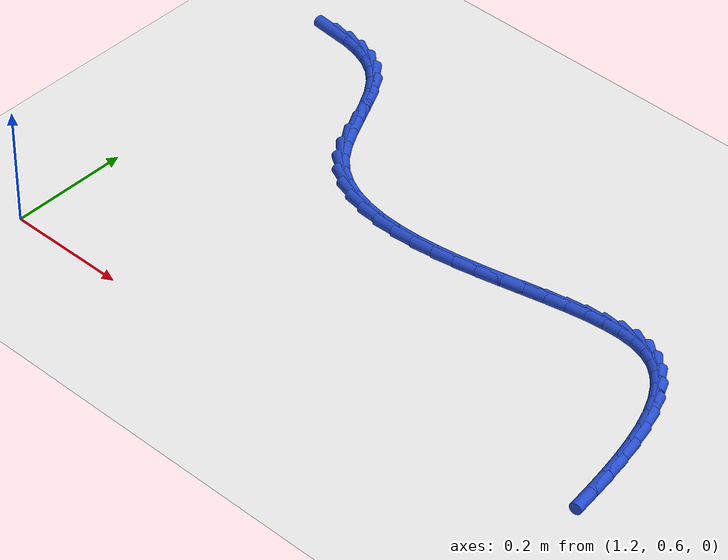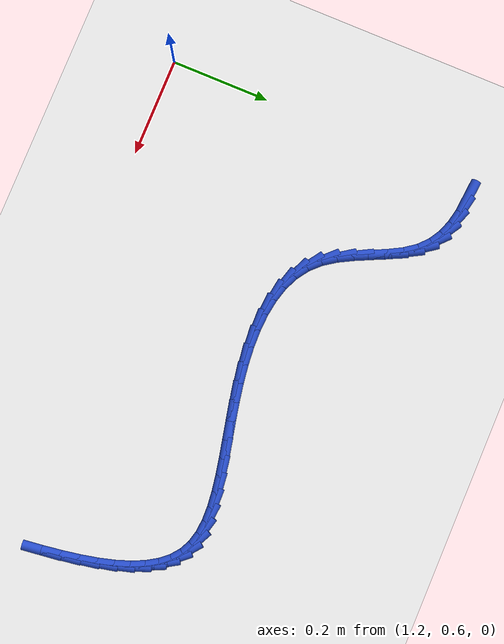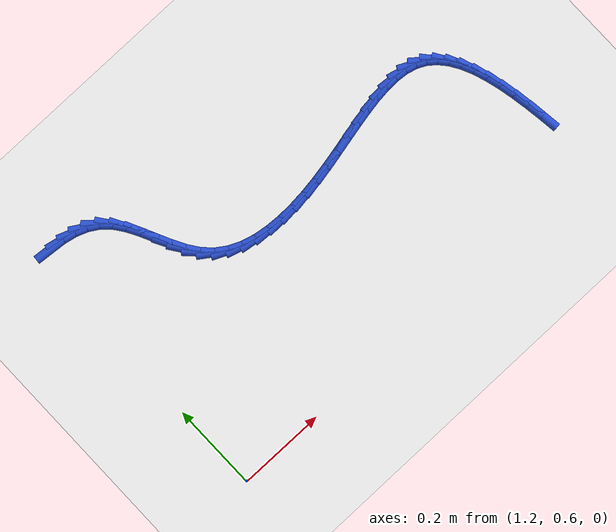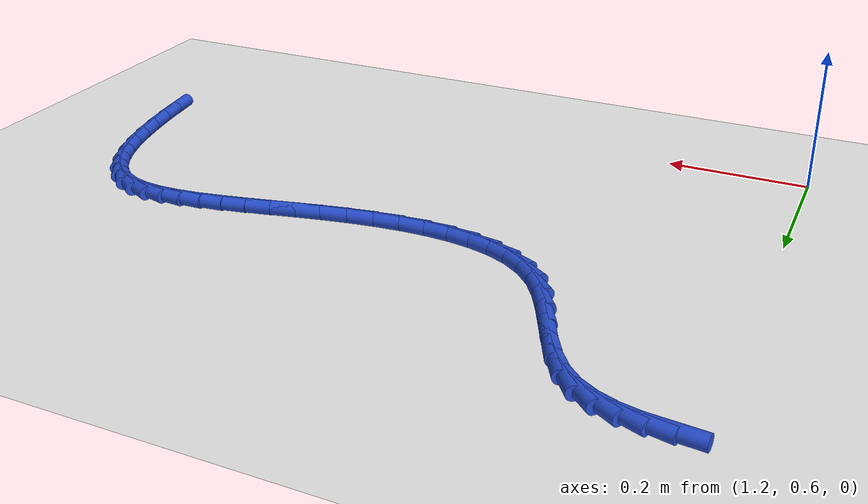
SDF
<sdf version="1.6">
 <world name="default">
  <model name="ground_plane">
   <static>1</static>
   <link name="link">
    <collision name="collision">
     <geometry><plane><normal>0 0 1</normal><size>100 100</size></plane></geometry>
     <surface><friction><ode><mu>100</mu><mu2>50</mu2></ode></friction></surface>
    </collision>
    <visual name="visual">
     <cast_shadows>0</cast_shadows>
     <geometry><plane><normal>0 0 1</normal><size>100 100</size></plane></geometry>
     <material>
      <script><uri>file://media/materials/scripts/gazebo.material</uri><name>Gazebo/WhiteGlow</name></script>
     </material>
    </visual>
   </link>
  </model>
  <model name="line">
   <link name="link_61">
    <pose>1.233552162716687 1.2422141895224112 0.01 0 1.57 -0.08804418489723281</pose>
    <collision name="collision">
     <geometry><cylinder><radius>0.01</radius><length>0.08</length></cylinder></geometry>
    </collision>
    <visual name="visual">
     <material>
      <script><name>Gazebo/Blue</name><uri>file://media/materials/scripts/gazebo.material</uri></script>
     </material>
     <geometry><cylinder><radius>0.01</radius><length>0.08</length></cylinder></geometry>
    </visual>
   </link>
   <link name="link_62">
    <pose>1.2641240833509346 1.239515532953836 0.01 0 1.57 -0.20658835754524088</pose>
    <collision name="collision">
     <geometry><cylinder><radius>0.01</radius><length>0.08</length></cylinder></geometry>
    </collision>
    <visual name="visual">
     <material>
      <script><name>Gazebo/Blue</name><uri>file://media/materials/scripts/gazebo.material</uri></script>
     </material>
     <geometry><cylinder><radius>0.01</radius><length>0.08</length></cylinder></geometry>
    </visual>
   </link>
   <link name="link_63">
    <pose>1.2925165357713895 1.2335650884913778 0.01 0 1.57 -0.35862255043536795</pose>
    <collision name="collision">
     <geometry><cylinder><radius>0.01</radius><length>0.08</length></cylinder></geometry>
    </collision>
    <visual name="visual">
     <material>
      <script><name>Gazebo/Blue</name><uri>file://media/materials/scripts/gazebo.material</uri></script>
     </material>
     <geometry><cylinder><radius>0.01</radius><length>0.08</length></cylinder></geometry>
    </visual>
   </link>
   <link name="link_64">
    <pose>1.3184981058672838 1.2238263890267904 0.01 0 1.57 -0.5423031485891293</pose>
    <collision name="collision">
     <geometry><cylinder><radius>0.01</radius><length>0.08</length></cylinder></geometry>
    </collision>
    <visual name="visual">
     <material>
      <script><name>Gazebo/Blue</name><uri>file://media/materials/scripts/gazebo.material</uri></script>
     </material>
     <geometry><cylinder><radius>0.01</radius><length>0.08</length></cylinder></geometry>
    </visual>
   </link>
   <link name="link_65">
    <pose>1.3418373795278513 1.2097629674518275 0.01 0 1.57 -0.7462978801994674</pose>
    <collision name="collision">
     <geometry><cylinder><radius>0.01</radius><length>0.08</length></cylinder></geometry>
    </collision>
    <visual name="visual">
     <material>
      <script><name>Gazebo/Blue</name><uri>file://media/materials/scripts/gazebo.material</uri></script>
     </material>
     <geometry><cylinder><radius>0.01</radius><length>0.08</length></cylinder></geometry>
    </visual>
   </link>
   <link name="link_66">
    <pose>1.3623029426423245 1.1908383566582414 0.01 0 1.57 -0.9405804749780178</pose>
    <collision name="collision">
     <geometry><cylinder><radius>0.01</radius><length>0.08</length></cylinder></geometry>
    </collision>
    <visual name="visual">
     <material>
      <script><name>Gazebo/Blue</name><uri>file://media/materials/scripts/gazebo.material</uri></script>
     </material>
     <geometry><cylinder><radius>0.01</radius><length>0.08</length></cylinder></geometry>
    </visual>
   </link>
   <link name="link_67">
    <pose>1.3798356904538087 1.1668026327357275 0.01 0 1.57 -1.0657359367603956</pose>
    <collision name="collision">
     <geometry><cylinder><radius>0.01</radius><length>0.08</length></cylinder></geometry>
    </collision>
    <visual name="visual">
     <material>
      <script><name>Gazebo/Blue</name><uri>file://media/materials/scripts/gazebo.material</uri></script>
     </material>
     <geometry><cylinder><radius>0.01</radius><length>0.08</length></cylinder></geometry>
    </visual>
   </link>
   <link name="link_68">
    <pose>1.3952686498238658 1.138889449079517 0.01 0 1.57 -1.1228312579180244</pose>
    <collision name="collision">
     <geometry><cylinder><radius>0.01</radius><length>0.08</length></cylinder></geometry>
    </collision>
    <visual name="visual">
     <material>
      <script><name>Gazebo/Blue</name><uri>file://media/materials/scripts/gazebo.material</uri></script>
     </material>
     <geometry><cylinder><radius>0.01</radius><length>0.08</length></cylinder></geometry>
    </visual>
   </link>
   <link name="link_69">
    <pose>1.4097227062559132 1.108811155881847 0.01 0 1.57 -1.124837785725288</pose>
    <collision name="collision">
     <geometry><cylinder><radius>0.01</radius><length>0.08</length></cylinder></geometry>
    </collision>
    <visual name="visual">
     <material>
      <script><name>Gazebo/Blue</name><uri>file://media/materials/scripts/gazebo.material</uri></script>
     </material>
     <geometry><cylinder><radius>0.01</radius><length>0.08</length></cylinder></geometry>
    </visual>
   </link>
   <link name="link_70">
    <pose>1.424318886866459 1.0782803388315554 0.01 0 1.57 -1.0742589575074755</pose>
    <collision name="collision">
     <geometry><cylinder><radius>0.01</radius><length>0.08</length></cylinder></geometry>
    </collision>
    <visual name="visual">
     <material>
      <script><name>Gazebo/Blue</name><uri>file://media/materials/scripts/gazebo.material</uri></script>
     </material>
     <geometry><cylinder><radius>0.01</radius><length>0.08</length></cylinder></geometry>
    </visual>
   </link>
   <link name="link_71">
    <pose>1.4401782187720094 1.0490095836174813 0.01 0 1.57 -0.9642979065111282</pose>
    <collision name="collision">
     <geometry><cylinder><radius>0.01</radius><length>0.08</length></cylinder></geometry>
    </collision>
    <visual name="visual">
     <material>
      <script><name>Gazebo/Blue</name><uri>file://media/materials/scripts/gazebo.material</uri></script>
     </material>
     <geometry><cylinder><radius>0.01</radius><length>0.08</length></cylinder></geometry>
    </visual>
   </link>
   <link name="link_72">
    <pose>1.4584217290890724 1.0227114759284641 0.01 0 1.57 -0.7884285700079395</pose>
    <collision name="collision">
     <geometry><cylinder><radius>0.01</radius><length>0.08</length></cylinder></geometry>
    </collision>
    <visual name="visual">
     <material>
      <script><name>Gazebo/Blue</name><uri>file://media/materials/scripts/gazebo.material</uri></script>
     </material>
     <geometry><cylinder><radius>0.01</radius><length>0.08</length></cylinder></geometry>
    </visual>
   </link>
   <link name="link_73">
    <pose>1.4800573007222284 1.0009443761503265 0.01 0 1.57 -0.5951966637301686</pose>
    <collision name="collision">
     <geometry><cylinder><radius>0.01</radius><length>0.08</length></cylinder></geometry>
    </collision>
    <visual name="visual">
     <material>
      <script><name>Gazebo/Blue</name><uri>file://media/materials/scripts/gazebo.material</uri></script>
     </material>
     <geometry><cylinder><radius>0.01</radius><length>0.08</length></cylinder></geometry>
    </visual>
   </link>
   <link name="link_74">
    <pose>1.505136469699359 0.9839630615307439 0.01 0 1.57 -0.4214832919624653</pose>
    <collision name="collision">
     <geometry><cylinder><radius>0.01</radius><length>0.08</length></cylinder></geometry>
    </collision>
    <visual name="visual">
     <material>
      <script><name>Gazebo/Blue</name><uri>file://media/materials/scripts/gazebo.material</uri></script>
     </material>
     <geometry><cylinder><radius>0.01</radius><length>0.08</length></cylinder></geometry>
    </visual>
   </link>
   <link name="link_75">
    <pose>1.5332301502516084 0.9713671804250219 0.01 0 1.57 -0.2738132017968993</pose>
    <collision name="collision">
     <geometry><cylinder><radius>0.01</radius><length>0.08</length></cylinder></geometry>
    </collision>
    <visual name="visual">
     <material>
      <script><name>Gazebo/Blue</name><uri>file://media/materials/scripts/gazebo.material</uri></script>
     </material>
     <geometry><cylinder><radius>0.01</radius><length>0.08</length></cylinder></geometry>
    </visual>
   </link>
   <link name="link_76">
    <pose>1.5639056233804158 0.9627514287835433 0.01 0 1.57 -0.1523813517364543</pose>
    <collision name="collision">
     <geometry><cylinder><radius>0.01</radius><length>0.08</length></cylinder></geometry>
    </collision>
    <visual name="visual">
     <material>
      <script><name>Gazebo/Blue</name><uri>file://media/materials/scripts/gazebo.material</uri></script>
     </material>
     <geometry><cylinder><radius>0.01</radius><length>0.08</length></cylinder></geometry>
    </visual>
   </link>
   <link name="link_77">
    <pose>1.5967301700872216 0.957710502556691 0.01 0 1.57 -0.05412646744865691</pose>
    <collision name="collision">
     <geometry><cylinder><radius>0.01</radius><length>0.08</length></cylinder></geometry>
    </collision>
    <visual name="visual">
     <material>
      <script><name>Gazebo/Blue</name><uri>file://media/materials/scripts/gazebo.material</uri></script>
     </material>
     <geometry><cylinder><radius>0.01</radius><length>0.08</length></cylinder></geometry>
    </visual>
   </link>
   <link name="link_78">
    <pose>1.6312710713734664 0.9558390976948477 0.01 0 1.57 0.024916656556305556</pose>
    <collision name="collision">
     <geometry><cylinder><radius>0.01</radius><length>0.08</length></cylinder></geometry>
    </collision>
    <visual name="visual">
     <material>
      <script><name>Gazebo/Blue</name><uri>file://media/materials/scripts/gazebo.material</uri></script>
     </material>
     <geometry><cylinder><radius>0.01</radius><length>0.08</length></cylinder></geometry>
    </visual>
   </link>
   <link name="link_79">
    <pose>1.6670956082405877 0.9567319101483961 0.01 0 1.57 0.08843094745435033</pose>
    <collision name="collision">
     <geometry><cylinder><radius>0.01</radius><length>0.08</length></cylinder></geometry>
    </collision>
    <visual name="visual">
     <material>
      <script><name>Gazebo/Blue</name><uri>file://media/materials/scripts/gazebo.material</uri></script>
     </material>
     <geometry><cylinder><radius>0.01</radius><length>0.08</length></cylinder></geometry>
    </visual>
   </link>
   <link name="link_80">
    <pose>1.7037710616900263 0.9599836358677193 0.01 0 1.57 0.1394191306789142</pose>
    <collision name="collision">
     <geometry><cylinder><radius>0.01</radius><length>0.08</length></cylinder></geometry>
    </collision>
    <visual name="visual">
     <material>
      <script><name>Gazebo/Blue</name><uri>file://media/materials/scripts/gazebo.material</uri></script>
     </material>
     <geometry><cylinder><radius>0.01</radius><length>0.08</length></cylinder></geometry>
    </visual>
   </link>
   <link name="link_81">
    <pose>1.740864712723223 0.9651889708032002 0.01 0 1.57 0.1794168075220151</pose>
    <collision name="collision">
     <geometry><cylinder><radius>0.01</radius><length>0.08</length></cylinder></geometry>
    </collision>
    <visual name="visual">
     <material>
      <script><name>Gazebo/Blue</name><uri>file://media/materials/scripts/gazebo.material</uri></script>
     </material>
     <geometry><cylinder><radius>0.01</radius><length>0.08</length></cylinder></geometry>
    </visual>
   </link>
   <link name="link_82">
    <pose>1.7779636890910222 0.971917504160331 0.01 0 1.57 0.20607369348020216</pose>
    <collision name="collision">
     <geometry><cylinder><radius>0.01</radius><length>0.08</length></cylinder></geometry>
    </collision>
    <visual name="visual">
     <material>
      <script><name>Gazebo/Blue</name><uri>file://media/materials/scripts/gazebo.material</uri></script>
     </material>
     <geometry><cylinder><radius>0.01</radius><length>0.08</length></cylinder></geometry>
    </visual>
   </link>
   <link name="link_83">
    <pose>1.8147577603229357 0.9796089801559297 0.01 0 1.57 0.21880569479641584</pose>
    <collision name="collision">
     <geometry><cylinder><radius>0.01</radius><length>0.08</length></cylinder></geometry>
    </collision>
    <visual name="visual">
     <material>
      <script><name>Gazebo/Blue</name><uri>file://media/materials/scripts/gazebo.material</uri></script>
     </material>
     <geometry><cylinder><radius>0.01</radius><length>0.08</length></cylinder></geometry>
    </visual>
   </link>
   <link name="link_84">
    <pose>1.8509697789085906 0.9876612920506243 0.01 0 1.57 0.21745119447670502</pose>
    <collision name="collision">
     <geometry><cylinder><radius>0.01</radius><length>0.08</length></cylinder></geometry>
    </collision>
    <visual name="visual">
     <material>
      <script><name>Gazebo/Blue</name><uri>file://media/materials/scripts/gazebo.material</uri></script>
     </material>
     <geometry><cylinder><radius>0.01</radius><length>0.08</length></cylinder></geometry>
    </visual>
   </link>
   <link name="link_85">
    <pose>1.886322613420067 0.9954723127602527 0.01 0 1.57 0.20088609609938662</pose>
    <collision name="collision">
     <geometry><cylinder><radius>0.01</radius><length>0.08</length></cylinder></geometry>
    </collision>
    <visual name="visual">
     <material>
      <script><name>Gazebo/Blue</name><uri>file://media/materials/scripts/gazebo.material</uri></script>
     </material>
     <geometry><cylinder><radius>0.01</radius><length>0.08</length></cylinder></geometry>
    </visual>
   </link>
   <link name="link_86">
    <pose>1.9205391324294419 1.002439915200652 0.01 0 1.57 0.16677598469629654</pose>
    <collision name="collision">
     <geometry><cylinder><radius>0.01</radius><length>0.08</length></cylinder></geometry>
    </collision>
    <visual name="visual">
     <material>
      <script><name>Gazebo/Blue</name><uri>file://media/materials/scripts/gazebo.material</uri></script>
     </material>
     <geometry><cylinder><radius>0.01</radius><length>0.08</length></cylinder></geometry>
    </visual>
   </link>
   <link name="link_87">
    <pose>1.9533422045087945 1.0079619722876596 0.01 0 1.57 0.11121092629190044</pose>
    <collision name="collision">
     <geometry><cylinder><radius>0.01</radius><length>0.08</length></cylinder></geometry>
    </collision>
    <visual name="visual">
     <material>
      <script><name>Gazebo/Blue</name><uri>file://media/materials/scripts/gazebo.material</uri></script>
     </material>
     <geometry><cylinder><radius>0.01</radius><length>0.08</length></cylinder></geometry>
    </visual>
   </link>
   <link name="link_88">
    <pose>1.984454698230204 1.011436356937113 0.01 0 1.57 0.028285171523786925</pose>
    <collision name="collision">
     <geometry><cylinder><radius>0.01</radius><length>0.08</length></cylinder></geometry>
    </collision>
    <visual name="visual">
     <material>
      <script><name>Gazebo/Blue</name><uri>file://media/materials/scripts/gazebo.material</uri></script>
     </material>
     <geometry><cylinder><radius>0.01</radius><length>0.08</length></cylinder></geometry>
    </visual>
   </link>
   <link name="link_89">
    <pose>2.013599482165748 1.012260942064849 0.01 0 1.57 -0.08999220836087674</pose>
    <collision name="collision">
     <geometry><cylinder><radius>0.01</radius><length>0.08</length></cylinder></geometry>
    </collision>
    <visual name="visual">
     <material>
      <script><name>Gazebo/Blue</name><uri>file://media/materials/scripts/gazebo.material</uri></script>
     </material>
     <geometry><cylinder><radius>0.01</radius><length>0.08</length></cylinder></geometry>
    </visual>
   </link>
   <link name="link_90">
    <pose>2.040499424887506 1.0098336005867055 0.01 0 1.57 -0.2521814193798697</pose>
    <collision name="collision">
     <geometry><cylinder><radius>0.01</radius><length>0.08</length></cylinder></geometry>
    </collision>
    <visual name="visual">
     <material>
      <script><name>Gazebo/Blue</name><uri>file://media/materials/scripts/gazebo.material</uri></script>
     </material>
     <geometry><cylinder><radius>0.01</radius><length>0.08</length></cylinder></geometry>
    </visual>
   </link>
   <link name="link_91">
    <pose>2.0648773949675565 1.0035522054185197 0.01 0 1.57 -0.4590862896090128</pose>
    <collision name="collision">
     <geometry><cylinder><radius>0.01</radius><length>0.08</length></cylinder></geometry>
    </collision>
    <visual name="visual">
     <material>
      <script><name>Gazebo/Blue</name><uri>file://media/materials/scripts/gazebo.material</uri></script>
     </material>
     <geometry><cylinder><radius>0.01</radius><length>0.08</length></cylinder></geometry>
    </visual>
   </link>
   <link name="link_92">
    <pose>2.08648649446326 0.992870583671974 0.01 0 1.57 -0.6731924585687444</pose>
    <collision name="collision">
     <geometry><cylinder><radius>0.01</radius><length>0.08</length></cylinder></geometry>
    </collision>
    <visual name="visual">
     <material>
      <script><name>Gazebo/Blue</name><uri>file://media/materials/scripts/gazebo.material</uri></script>
     </material>
     <geometry><cylinder><radius>0.01</radius><length>0.08</length></cylinder></geometry>
    </visual>
   </link>
   <link name="link_93">
    <pose>2.1053821123495173 0.9778020157016811 0.01 0 1.57 -0.8614870429714028</pose>
    <collision name="collision">
     <geometry><cylinder><radius>0.01</radius><length>0.08</length></cylinder></geometry>
    </collision>
    <visual name="visual">
     <material>
      <script><name>Gazebo/Blue</name><uri>file://media/materials/scripts/gazebo.material</uri></script>
     </material>
     <geometry><cylinder><radius>0.01</radius><length>0.08</length></cylinder></geometry>
    </visual>
   </link>
   <link name="link_94">
    <pose>2.1217935950204136 0.9586817310987042 0.01 0 1.57 -1.0157255691108078</pose>
    <collision name="collision">
     <geometry><cylinder><radius>0.01</radius><length>0.08</length></cylinder></geometry>
    </collision>
    <visual name="visual">
     <material>
      <script><name>Gazebo/Blue</name><uri>file://media/materials/scripts/gazebo.material</uri></script>
     </material>
     <geometry><cylinder><radius>0.01</radius><length>0.08</length></cylinder></geometry>
    </visual>
   </link>
   <link name="link_95">
    <pose>2.135952373373983 0.9358488173203566 0.01 0 1.57 -1.1370612985891886</pose>
    <collision name="collision">
     <geometry><cylinder><radius>0.01</radius><length>0.08</length></cylinder></geometry>
    </collision>
    <visual name="visual">
     <material>
      <script><name>Gazebo/Blue</name><uri>file://media/materials/scripts/gazebo.material</uri></script>
     </material>
     <geometry><cylinder><radius>0.01</radius><length>0.08</length></cylinder></geometry>
    </visual>
   </link>
   <link name="link_96">
    <pose>2.1480898783082645 0.9096423618239521 0.01 0 1.57 -1.2306724931013315</pose>
    <collision name="collision">
     <geometry><cylinder><radius>0.01</radius><length>0.08</length></cylinder></geometry>
    </collision>
    <visual name="visual">
     <material>
      <script><name>Gazebo/Blue</name><uri>file://media/materials/scripts/gazebo.material</uri></script>
     </material>
     <geometry><cylinder><radius>0.01</radius><length>0.08</length></cylinder></geometry>
    </visual>
   </link>
   <link name="link_97">
    <pose>2.1584375407212955 0.8804014520668059 0.01 0 1.57 -1.3022329082983914</pose>
    <collision name="collision">
     <geometry><cylinder><radius>0.01</radius><length>0.08</length></cylinder></geometry>
    </collision>
    <visual name="visual">
     <material>
      <script><name>Gazebo/Blue</name><uri>file://media/materials/scripts/gazebo.material</uri></script>
     </material>
     <geometry><cylinder><radius>0.01</radius><length>0.08</length></cylinder></geometry>
    </visual>
   </link>
   <link name="link_98">
    <pose>2.1672267915111116 0.8484651755062312 0.01 0 1.57 -1.3565305297705115</pose>
    <collision name="collision">
     <geometry><cylinder><radius>0.01</radius><length>0.08</length></cylinder></geometry>
    </collision>
    <visual name="visual">
     <material>
      <script><name>Gazebo/Blue</name><uri>file://media/materials/scripts/gazebo.material</uri></script>
     </material>
     <geometry><cylinder><radius>0.01</radius><length>0.08</length></cylinder></geometry>
    </visual>
   </link>
   <link name="link_99">
    <pose>2.1746890615757515 0.8141726195995423 0.01 0 1.57 -1.3972162653475524</pose>
    <collision name="collision">
     <geometry><cylinder><radius>0.01</radius><length>0.08</length></cylinder></geometry>
    </collision>
    <visual name="visual">
     <material>
      <script><name>Gazebo/Blue</name><uri>file://media/materials/scripts/gazebo.material</uri></script>
     </material>
     <geometry><cylinder><radius>0.01</radius><length>0.08</length></cylinder></geometry>
    </visual>
   </link>
   <link name="link_100">
    <pose>2.181055781813252 0.7778628718040533 0.01 0 1.57 -1.4269452488647163</pose>
    <collision name="collision">
     <geometry><cylinder><radius>0.01</radius><length>0.08</length></cylinder></geometry>
    </collision>
    <visual name="visual">
     <material>
      <script><name>Gazebo/Blue</name><uri>file://media/materials/scripts/gazebo.material</uri></script>
     </material>
     <geometry><cylinder><radius>0.01</radius><length>0.08</length></cylinder></geometry>
    </visual>
   </link>
   <link name="link_101">
    <pose>2.18655838312165 0.7398750195770789 0.01 0 1.57 -1.447591818103357</pose>
    <collision name="collision">
     <geometry><cylinder><radius>0.01</radius><length>0.08</length></cylinder></geometry>
    </collision>
    <visual name="visual">
     <material>
      <script><name>Gazebo/Blue</name><uri>file://media/materials/scripts/gazebo.material</uri></script>
     </material>
     <geometry><cylinder><radius>0.01</radius><length>0.08</length></cylinder></geometry>
    </visual>
   </link>
  </model>
 </world>
</sdf>
